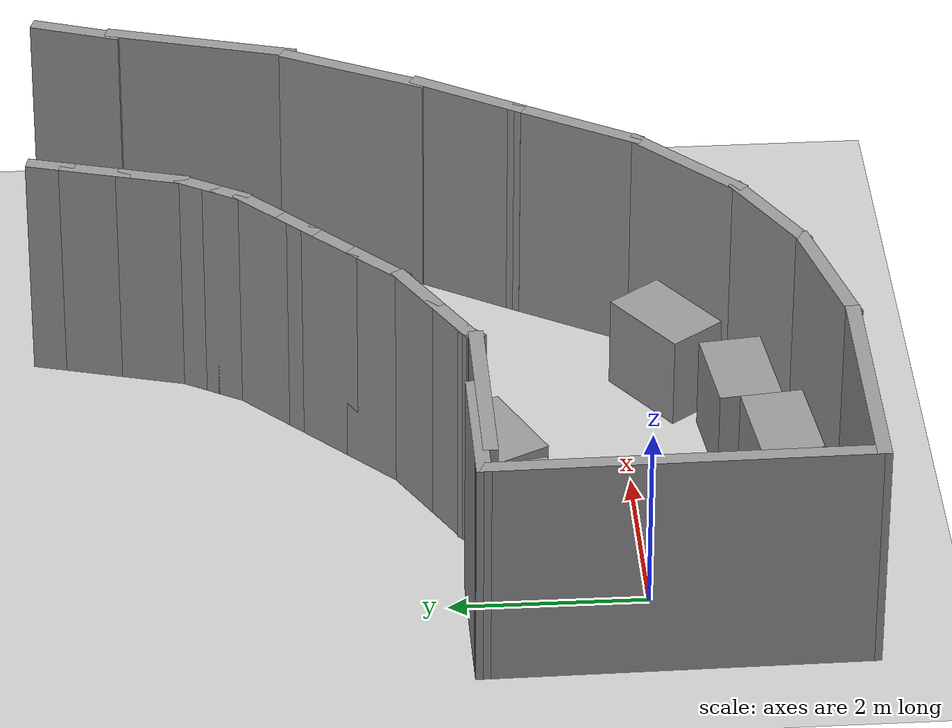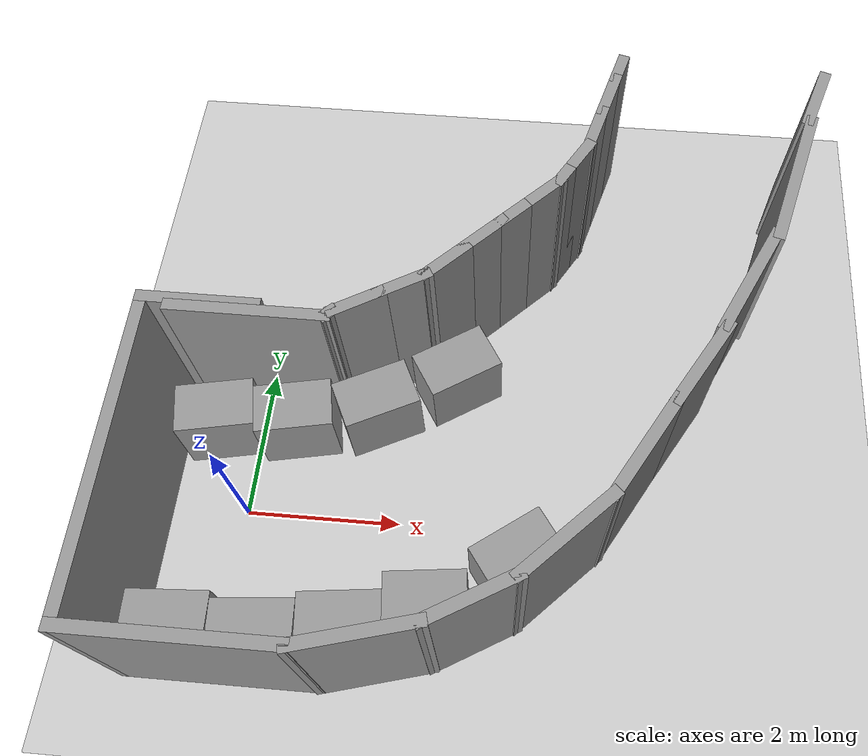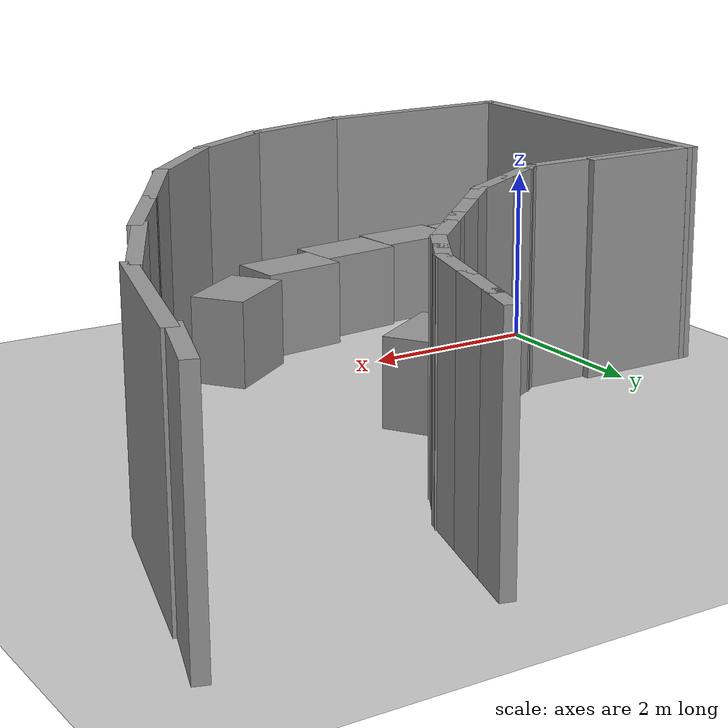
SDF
<sdf version="1.7">
 <world name="default">
  <light name="sun" type="directional">
   <pose>0 0 10 0 -0 0</pose>
   <diffuse>0.8 0.8 0.8 1</diffuse>
   <specular>0.2 0.2 0.2 1</specular>
   <attenuation>
    <range>1000</range>
    <constant>0.9</constant>
    <linear>0.01</linear>
    <quadratic>0.001</quadratic>
   </attenuation>
   <direction>-0.5 0.1 -0.9</direction>
   <spot><inner_angle>0</inner_angle><outer_angle>0</outer_angle><falloff>0</falloff></spot>
  </light>
  <model name="ground_plane">
   <static>1</static>
   <link name="link">
    <collision name="collision">
     <geometry><plane><normal>0 0 1</normal><size>100 100</size></plane></geometry>
     <surface>
      <contact><collide_bitmask>65535</collide_bitmask></contact>
      <friction><ode><mu>100</mu><mu2>50</mu2></ode></friction>
     </surface>
    </collision>
    <visual name="visual">
     <cast_shadows>0</cast_shadows>
     <geometry><plane><normal>0 0 1</normal><size>100 100</size></plane></geometry>
     <material>
      <script><uri>file://media/materials/scripts/gazebo.material</uri><name>Gazebo/Grey</name></script>
     </material>
    </visual>
   </link>
  </model>
  <gravity>0 0 -9.8</gravity>
  <magnetic_field>6e-06 2.3e-05 -4.2e-05</magnetic_field>
  <atmosphere type="adiabatic"/>
  <physics type="ode">
   <max_step_size>0.001</max_step_size>
   <real_time_factor>1</real_time_factor>
   <real_time_update_rate>1000</real_time_update_rate>
  </physics>
  <scene><ambient>0.4 0.4 0.4 1</ambient><background>0.7 0.7 0.7 1</background><shadows>1</shadows></scene>
  <spherical_coordinates>
   <surface_model>EARTH_WGS84</surface_model>
   <latitude_deg>0</latitude_deg>
   <longitude_deg>0</longitude_deg>
   <elevation>0</elevation>
   <heading_deg>0</heading_deg>
  </spherical_coordinates>
  <model name="curved_path">
   <pose>3.06084 1.92111 0 0 -0 0</pose>
   <link name="Wall_15">
    <collision name="Wall_15_Collision">
     <geometry><box><size>2.5 0.15 2.5</size></box></geometry>
     <pose>0 0 1.25 0 -0 0</pose>
    </collision>
    <visual name="Wall_15_Visual">
     <pose>0 0 1.25 0 -0 0</pose>
     <geometry><box><size>2.5 0.15 2.5</size></box></geometry>
     <material>
      <script><uri>file://media/materials/scripts/gazebo.material</uri><name>Gazebo/Grey</name></script>
      <ambient>1 1 1 1</ambient>
     </material>
     <meta><layer>0</layer></meta>
    </visual>
    <pose>-2.93415 -4.02037 0 0 -0 0</pose>
   </link>
   <link name="Wall_17">
    <collision name="Wall_17_Collision">
     <geometry><box><size>1.5 0.15 2.5</size></box></geometry>
     <pose>0 0 1.25 0 -0 0</pose>
    </collision>
    <visual name="Wall_17_Visual">
     <pose>0 0 1.25 0 -0 0</pose>
     <geometry><box><size>1.5 0.15 2.5</size></box></geometry>
     <material>
      <script><uri>file://media/materials/scripts/gazebo.material</uri><name>Gazebo/Grey</name></script>
      <ambient>1 1 1 1</ambient>
     </material>
     <meta><layer>0</layer></meta>
    </visual>
    <pose>-1.07726 -3.84808 0 0 -0 0.261799</pose>
   </link>
   <link name="Wall_18">
    <collision name="Wall_18_Collision">
     <geometry><box><size>1.25 0.15 2.5</size></box></geometry>
     <pose>0 0 1.25 0 -0 0</pose>
    </collision>
    <visual name="Wall_18_Visual">
     <pose>0 0 1.25 0 -0 0</pose>
     <geometry><box><size>1.25 0.15 2.5</size></box></geometry>
     <material>
      <script><uri>file://media/materials/scripts/gazebo.material</uri><name>Gazebo/Grey</name></script>
      <ambient>1 1 1 1</ambient>
     </material>
     <meta><layer>0</layer></meta>
    </visual>
    <pose>0.051053 -3.39838 0 0 -0 0.523599</pose>
   </link>
   <link name="Wall_19">
    <collision name="Wall_19_Collision">
     <geometry><box><size>1.5 0.15 2.5</size></box></geometry>
     <pose>0 0 1.25 0 -0 0</pose>
    </collision>
    <visual name="Wall_19_Visual">
     <pose>0 0 1.25 0 -0 0</pose>
     <geometry><box><size>1.5 0.15 2.5</size></box></geometry>
     <material>
      <script><uri>file://media/materials/scripts/gazebo.material</uri><name>Gazebo/Grey</name></script>
      <ambient>1 1 1 1</ambient>
     </material>
     <meta><layer>0</layer></meta>
    </visual>
    <pose>1.00466 -2.64608 0 0 -0 0.785398</pose>
   </link>
   <link name="Wall_20">
    <collision name="Wall_20_Collision">
     <geometry><box><size>1.5 0.15 2.5</size></box></geometry>
     <pose>0 0 1.25 0 -0 0</pose>
    </collision>
    <visual name="Wall_20_Visual">
     <pose>0 0 1.25 0 -0 0</pose>
     <geometry><box><size>1.5 0.15 2.5</size></box></geometry>
     <material>
      <script><uri>file://media/materials/scripts/gazebo.material</uri><name>Gazebo/Grey</name></script>
      <ambient>1 1 1 1</ambient>
     </material>
     <meta><layer>0</layer></meta>
    </visual>
    <pose>1.81946 -1.58422 0 0 -0 1.0472</pose>
   </link>
   <link name="Wall_21">
    <collision name="Wall_21_Collision">
     <geometry><box><size>1.30536 0.15 2.5</size></box></geometry>
     <pose>0 0 1.25 0 -0 0</pose>
    </collision>
    <visual name="Wall_21_Visual">
     <pose>0 0 1.25 0 -0 0</pose>
     <geometry><box><size>1.30536 0.15 2.5</size></box></geometry>
     <material>
      <script><uri>file://media/materials/scripts/gazebo.material</uri><name>Gazebo/Grey</name></script>
      <ambient>1 1 1 1</ambient>
     </material>
     <meta><layer>0</layer></meta>
    </visual>
    <pose>2.45219 -0.503109 0 0 -0 1.03438</pose>
   </link>
   <link name="Wall_22">
    <collision name="Wall_22_Collision">
     <geometry><box><size>1.63634 0.15 2.5</size></box></geometry>
     <pose>0 0 1.25 0 -0 0</pose>
    </collision>
    <visual name="Wall_22_Visual">
     <pose>0 0 1.25 0 -0 0</pose>
     <geometry><box><size>1.63634 0.15 2.5</size></box></geometry>
     <material>
      <script><uri>file://media/materials/scripts/gazebo.material</uri><name>Gazebo/Grey</name></script>
      <ambient>1 1 1 1</ambient>
     </material>
     <meta><layer>0</layer></meta>
    </visual>
    <pose>3.03499 0.660288 0 0 -0 1.11364</pose>
   </link>
   <link name="Wall_23">
    <collision name="Wall_23_Collision">
     <geometry><box><size>2.05026 0.15 2.5</size></box></geometry>
     <pose>0 0 1.25 0 -0 0</pose>
    </collision>
    <visual name="Wall_23_Visual">
     <pose>0 0 1.25 0 -0 0</pose>
     <geometry><box><size>2.05026 0.15 2.5</size></box></geometry>
     <material>
      <script><uri>file://media/materials/scripts/gazebo.material</uri><name>Gazebo/Grey</name></script>
      <ambient>1 1 1 1</ambient>
     </material>
     <meta><layer>0</layer></meta>
    </visual>
    <pose>3.65508 2.24336 0 0 -0 1.3028</pose>
   </link>
   <link name="Wall_24">
    <collision name="Wall_24_Collision">
     <geometry><box><size>0.972887 0.15 2.5</size></box></geometry>
     <pose>0 0 1.25 0 -0 0</pose>
    </collision>
    <visual name="Wall_24_Visual">
     <pose>0 0 1.25 0 -0 0</pose>
     <geometry><box><size>0.972887 0.15 2.5</size></box></geometry>
     <material>
      <script><uri>file://media/materials/scripts/gazebo.material</uri><name>Gazebo/Grey</name></script>
      <ambient>1 1 1 1</ambient>
     </material>
     <meta><layer>0</layer></meta>
    </visual>
    <pose>3.99644 3.54986 0 0 -0 1.24875</pose>
   </link>
   <link name="Wall_33">
    <collision name="Wall_33_Collision">
     <geometry><box><size>2 0.15 2.5</size></box></geometry>
     <pose>0 0 1.25 0 -0 0</pose>
    </collision>
    <visual name="Wall_33_Visual">
     <pose>0 0 1.25 0 -0 0</pose>
     <geometry><box><size>2 0.15 2.5</size></box></geometry>
     <material>
      <script><uri>file://media/materials/scripts/gazebo.material</uri><name>Gazebo/Grey</name></script>
      <ambient>1 1 1 1</ambient>
     </material>
     <meta><layer>0</layer></meta>
    </visual>
    <pose>-2.87462 -0.271609 0 0 -0 0</pose>
   </link>
   <link name="Wall_34">
    <collision name="Wall_34_Collision">
     <geometry><box><size>0.25 0.15 2.5</size></box></geometry>
     <pose>0 0 1.25 0 -0 0</pose>
    </collision>
    <visual name="Wall_34_Visual">
     <pose>0 0 1.25 0 -0 0</pose>
     <geometry><box><size>0.25 0.15 2.5</size></box></geometry>
     <material>
      <script><uri>file://media/materials/scripts/gazebo.material</uri><name>Gazebo/Grey</name></script>
      <ambient>1 1 1 1</ambient>
     </material>
     <meta><layer>0</layer></meta>
    </visual>
    <pose>-1.91426 -0.236253 0 0 -0 0.785398</pose>
   </link>
   <link name="Wall_35">
    <collision name="Wall_35_Collision">
     <geometry><box><size>0.75 0.15 2.5</size></box></geometry>
     <pose>0 0 1.25 0 -0 0</pose>
    </collision>
    <visual name="Wall_35_Visual">
     <pose>0 0 1.25 0 -0 0</pose>
     <geometry><box><size>0.75 0.15 2.5</size></box></geometry>
     <material>
      <script><uri>file://media/materials/scripts/gazebo.material</uri><name>Gazebo/Grey</name></script>
      <ambient>1 1 1 1</ambient>
     </material>
     <meta><layer>0</layer></meta>
    </visual>
    <pose>-1.6191 -0.050898 0 0 -0 0.523599</pose>
   </link>
   <link name="Wall_36">
    <collision name="Wall_36_Collision">
     <geometry><box><size>0.75 0.15 2.5</size></box></geometry>
     <pose>0 0 1.25 0 -0 0</pose>
    </collision>
    <visual name="Wall_36_Visual">
     <pose>0 0 1.25 0 -0 0</pose>
     <geometry><box><size>0.75 0.15 2.5</size></box></geometry>
     <material>
      <script><uri>file://media/materials/scripts/gazebo.material</uri><name>Gazebo/Grey</name></script>
      <ambient>1 1 1 1</ambient>
     </material>
     <meta><layer>0</layer></meta>
    </visual>
    <pose>-1.09949 0.249102 0 0 -0 0.523599</pose>
   </link>
   <link name="Wall_37">
    <collision name="Wall_37_Collision">
     <geometry><box><size>0.75 0.15 2.5</size></box></geometry>
     <pose>0 0 1.25 0 -0 0</pose>
    </collision>
    <visual name="Wall_37_Visual">
     <pose>0 0 1.25 0 -0 0</pose>
     <geometry><box><size>0.75 0.15 2.5</size></box></geometry>
     <material>
      <script><uri>file://media/materials/scripts/gazebo.material</uri><name>Gazebo/Grey</name></script>
      <ambient>1 1 1 1</ambient>
     </material>
     <meta><layer>0</layer></meta>
    </visual>
    <pose>-0.627546 0.611234 0 0 -0 0.785398</pose>
   </link>
   <link name="Wall_38">
    <collision name="Wall_38_Collision">
     <geometry><box><size>0.75 0.15 2.5</size></box></geometry>
     <pose>0 0 1.25 0 -0 0</pose>
    </collision>
    <visual name="Wall_38_Visual">
     <pose>0 0 1.25 0 -0 0</pose>
     <geometry><box><size>0.75 0.15 2.5</size></box></geometry>
     <material>
      <script><uri>file://media/materials/scripts/gazebo.material</uri><name>Gazebo/Grey</name></script>
      <ambient>1 1 1 1</ambient>
     </material>
     <meta><layer>0</layer></meta>
    </visual>
    <pose>-0.203282 1.0355 0 0 -0 0.785398</pose>
   </link>
   <link name="Wall_39">
    <collision name="Wall_39_Collision">
     <geometry><box><size>0.5 0.15 2.5</size></box></geometry>
     <pose>0 0 1.25 0 -0 0</pose>
    </collision>
    <visual name="Wall_39_Visual">
     <pose>0 0 1.25 0 -0 0</pose>
     <geometry><box><size>0.5 0.15 2.5</size></box></geometry>
     <material>
      <script><uri>file://media/materials/scripts/gazebo.material</uri><name>Gazebo/Grey</name></script>
      <ambient>1 1 1 1</ambient>
     </material>
     <meta><layer>0</layer></meta>
    </visual>
    <pose>0.132593 1.37137 0 0 -0 0.785398</pose>
   </link>
   <link name="Wall_40">
    <collision name="Wall_40_Collision">
     <geometry><box><size>0.75 0.15 2.5</size></box></geometry>
     <pose>0 0 1.25 0 -0 0</pose>
    </collision>
    <visual name="Wall_40_Visual">
     <pose>0 0 1.25 0 -0 0</pose>
     <geometry><box><size>0.75 0.15 2.5</size></box></geometry>
     <material>
      <script><uri>file://media/materials/scripts/gazebo.material</uri><name>Gazebo/Grey</name></script>
      <ambient>1 1 1 1</ambient>
     </material>
     <meta><layer>0</layer></meta>
    </visual>
    <pose>0.468469 1.70725 0 0 -0 0.785398</pose>
   </link>
   <link name="Wall_41">
    <collision name="Wall_41_Collision">
     <geometry><box><size>0.5 0.15 2.5</size></box></geometry>
     <pose>0 0 1.25 0 -0 0</pose>
    </collision>
    <visual name="Wall_41_Visual">
     <pose>0 0 1.25 0 -0 0</pose>
     <geometry><box><size>0.5 0.15 2.5</size></box></geometry>
     <material>
      <script><uri>file://media/materials/scripts/gazebo.material</uri><name>Gazebo/Grey</name></script>
      <ambient>1 1 1 1</ambient>
     </material>
     <meta><layer>0</layer></meta>
    </visual>
    <pose>0.768101 2.07094 0 0 -0 1.0472</pose>
   </link>
   <link name="Wall_42">
    <collision name="Wall_42_Collision">
     <geometry><box><size>0.5 0.15 2.5</size></box></geometry>
     <pose>0 0 1.25 0 -0 0</pose>
    </collision>
    <visual name="Wall_42_Visual">
     <pose>0 0 1.25 0 -0 0</pose>
     <geometry><box><size>0.5 0.15 2.5</size></box></geometry>
     <material>
      <script><uri>file://media/materials/scripts/gazebo.material</uri><name>Gazebo/Grey</name></script>
      <ambient>1 1 1 1</ambient>
     </material>
     <meta><layer>0</layer></meta>
    </visual>
    <pose>0.943101 2.37405 0 0 -0 1.0472</pose>
   </link>
   <link name="Wall_43">
    <collision name="Wall_43_Collision">
     <geometry><box><size>0.75 0.15 2.5</size></box></geometry>
     <pose>0 0 1.25 0 -0 0</pose>
    </collision>
    <visual name="Wall_43_Visual">
     <pose>0 0 1.25 0 -0 0</pose>
     <geometry><box><size>0.75 0.15 2.5</size></box></geometry>
     <material>
      <script><uri>file://media/materials/scripts/gazebo.material</uri><name>Gazebo/Grey</name></script>
      <ambient>1 1 1 1</ambient>
     </material>
     <meta><layer>0</layer></meta>
    </visual>
    <pose>1.10825 2.81538 0 0 -0 1.309</pose>
   </link>
   <link name="Wall_44">
    <collision name="Wall_44_Collision">
     <geometry><box><size>0.75 0.15 2.5</size></box></geometry>
     <pose>0 0 1.25 0 -0 0</pose>
    </collision>
    <visual name="Wall_44_Visual">
     <pose>0 0 1.25 0 -0 0</pose>
     <geometry><box><size>0.75 0.15 2.5</size></box></geometry>
     <material>
      <script><uri>file://media/materials/scripts/gazebo.material</uri><name>Gazebo/Grey</name></script>
      <ambient>1 1 1 1</ambient>
     </material>
     <meta><layer>0</layer></meta>
    </visual>
    <pose>1.26354 3.39493 0 0 -0 1.309</pose>
   </link>
   <link name="Wall_45">
    <collision name="Wall_45_Collision">
     <geometry><box><size>0.5 0.15 2.5</size></box></geometry>
     <pose>0 0 1.25 0 -0 0</pose>
    </collision>
    <visual name="Wall_45_Visual">
     <pose>0 0 1.25 0 -0 0</pose>
     <geometry><box><size>0.5 0.15 2.5</size></box></geometry>
     <material>
      <script><uri>file://media/materials/scripts/gazebo.material</uri><name>Gazebo/Grey</name></script>
      <ambient>1 1 1 1</ambient>
     </material>
     <meta><layer>0</layer></meta>
    </visual>
    <pose>1.38648 3.85375 0 0 -0 1.309</pose>
   </link>
   <link name="Wall_47">
    <collision name="Wall_47_Collision">
     <geometry><box><size>3.98749 0.15 2.5</size></box></geometry>
     <pose>0 0 1.25 0 -0 0</pose>
    </collision>
    <visual name="Wall_47_Visual">
     <pose>0 0 1.25 0 -0 0</pose>
     <geometry><box><size>3.98749 0.15 2.5</size></box></geometry>
     <material>
      <script><uri>file://media/materials/scripts/gazebo.material</uri><name>Gazebo/Grey</name></script>
      <ambient>1 1 1 1</ambient>
     </material>
     <meta><layer>0</layer></meta>
    </visual>
    <pose>-4.12749 -2.10172 0 0 -0 -1.56124</pose>
   </link>
   <link name="Wall_49">
    <collision name="Wall_49_Collision">
     <geometry><box><size>1.5 0.15 2.5</size></box></geometry>
     <pose>0 0 1.25 0 -0 0</pose>
    </collision>
    <visual name="Wall_49_Visual">
     <pose>0 0 1.25 0 -0 0</pose>
     <geometry><box><size>1.5 0.15 2.5</size></box></geometry>
     <material>
      <script><uri>file://media/materials/scripts/gazebo.material</uri><name>Gazebo/Grey</name></script>
      <ambient>1 1 1 1</ambient>
     </material>
     <meta><layer>0</layer></meta>
    </visual>
    <pose>-3.47084 -0.18306 0 0 -0 0</pose>
   </link>
   <static>1</static>
  </model>
  <model name="unit_box">
   <pose>-0.461181 -1.63254 0.5 0 -0 0.05405</pose>
   <link name="link">
    <inertial>
     <mass>1</mass>
     <inertia>
      <ixx>0.166667</ixx>
      <ixy>0</ixy>
      <ixz>0</ixz>
      <iyy>0.166667</iyy>
      <iyz>0</iyz>
      <izz>0.166667</izz>
     </inertia>
    </inertial>
    <collision name="collision"><geometry><box><size>1 0.642108 1</size></box></geometry></collision>
    <visual name="visual">
     <geometry><box><size>1 0.642108 1</size></box></geometry>
     <material>
      <script><name>Gazebo/Grey</name><uri>file://media/materials/scripts/gazebo.material</uri></script>
     </material>
    </visual>
   </link>
  </model>
  <model name="unit_box_clone">
   <pose>0.551463 -1.64772 0.5 0 -0 0.081275</pose>
   <link name="link">
    <inertial>
     <mass>1</mass>
     <inertia>
      <ixx>0.166667</ixx>
      <ixy>0</ixy>
      <ixz>0</ixz>
      <iyy>0.166667</iyy>
      <iyz>0</iyz>
      <izz>0.166667</izz>
     </inertia>
    </inertial>
    <collision name="collision"><geometry><box><size>1 0.642108 1</size></box></geometry></collision>
    <visual name="visual">
     <geometry><box><size>1 0.642108 1</size></box></geometry>
     <material>
      <script><name>Gazebo/Grey</name><uri>file://media/materials/scripts/gazebo.material</uri></script>
     </material>
    </visual>
   </link>
  </model>
  <model name="unit_box_clone_0">
   <pose>1.54897 -1.47451 0.5 0 -0 0.112138</pose>
   <link name="link">
    <inertial>
     <mass>1</mass>
     <inertia>
      <ixx>0.166667</ixx>
      <ixy>0</ixy>
      <ixz>0</ixz>
      <iyy>0.166667</iyy>
      <iyz>0</iyz>
      <izz>0.166667</izz>
     </inertia>
    </inertial>
    <collision name="collision"><geometry><box><size>1 0.642108 1</size></box></geometry></collision>
    <visual name="visual">
     <geometry><box><size>1 0.642108 1</size></box></geometry>
     <material>
      <script><name>Gazebo/Grey</name><uri>file://media/materials/scripts/gazebo.material</uri></script>
     </material>
    </visual>
   </link>
  </model>
  <model name="unit_box_clone_1">
   <pose>2.5193 -1.15361 0.499995 0 -9e-06 0.111739</pose>
   <link name="link">
    <inertial>
     <mass>1</mass>
     <inertia>
      <ixx>0.166667</ixx>
      <ixy>0</ixy>
      <ixz>0</ixz>
      <iyy>0.166667</iyy>
      <iyz>0</iyz>
      <izz>0.166667</izz>
     </inertia>
    </inertial>
    <collision name="collision"><geometry><box><size>1 0.642108 1</size></box></geometry></collision>
    <visual name="visual">
     <geometry><box><size>1 0.642108 1</size></box></geometry>
     <material>
      <script><name>Gazebo/Grey</name><uri>file://media/materials/scripts/gazebo.material</uri></script>
     </material>
    </visual>
   </link>
  </model>
  <model name="unit_box_clone_2">
   <pose>3.55844 -0.497014 0.5 0 -0 0.628766</pose>
   <link name="link">
    <inertial>
     <mass>1</mass>
     <inertia>
      <ixx>0.166667</ixx>
      <ixy>0</ixy>
      <ixz>0</ixz>
      <iyy>0.166667</iyy>
      <iyz>0</iyz>
      <izz>0.166667</izz>
     </inertia>
    </inertial>
    <collision name="collision"><geometry><box><size>1 0.642108 1</size></box></geometry></collision>
    <visual name="visual">
     <geometry><box><size>1 0.642108 1</size></box></geometry>
     <material>
      <script><name>Gazebo/Grey</name><uri>file://media/materials/scripts/gazebo.material</uri></script>
     </material>
    </visual>
   </link>
  </model>
  <model name="unit_box_clone_2_clone">
   <pose>2.57955 1.97381 0.5 0 -0 0.565769</pose>
   <link name="link">
    <inertial>
     <mass>1</mass>
     <inertia>
      <ixx>0.166667</ixx>
      <ixy>0</ixy>
      <ixz>0</ixz>
      <iyy>0.166667</iyy>
      <iyz>0</iyz>
      <izz>0.166667</izz>
     </inertia>
    </inertial>
    <collision name="collision"><geometry><box><size>1 0.642108 1</size></box></geometry></collision>
    <visual name="visual">
     <geometry><box><size>1 0.642108 1</size></box></geometry>
     <material>
      <script><name>Gazebo/Grey</name><uri>file://media/materials/scripts/gazebo.material</uri></script>
     </material>
    </visual>
   </link>
  </model>
  <model name="unit_box_clone_2_clone_0">
   <pose>1.58651 1.41455 0.5 0 -0 0.461336</pose>
   <link name="link">
    <inertial>
     <mass>1</mass>
     <inertia>
      <ixx>0.166667</ixx>
      <ixy>0</ixy>
      <ixz>0</ixz>
      <iyy>0.166667</iyy>
      <iyz>0</iyz>
      <izz>0.166667</izz>
     </inertia>
    </inertial>
    <collision name="collision"><geometry><box><size>1 0.642108 1</size></box></geometry></collision>
    <visual name="visual">
     <geometry><box><size>1 0.642108 1</size></box></geometry>
     <material>
      <script><name>Gazebo/Grey</name><uri>file://media/materials/scripts/gazebo.material</uri></script>
     </material>
    </visual>
   </link>
  </model>
  <model name="unit_box_clone_3">
   <pose>-0.453428 1.07447 0.49999 0 -0 0.19306</pose>
   <link name="link">
    <inertial>
     <mass>1</mass>
     <inertia>
      <ixx>0.166667</ixx>
      <ixy>0</ixy>
      <ixz>0</ixz>
      <iyy>0.166667</iyy>
      <iyz>0</iyz>
      <izz>0.166667</izz>
     </inertia>
    </inertial>
    <collision name="collision"><geometry><box><size>1 0.642108 1</size></box></geometry></collision>
    <visual name="visual">
     <geometry><box><size>1 0.642108 1</size></box></geometry>
     <material>
      <script><name>Gazebo/Grey</name><uri>file://media/materials/scripts/gazebo.material</uri></script>
     </material>
    </visual>
   </link>
  </model>
  <model name="unit_box_clone_4">
   <pose>0.550394 1.15304 0.500001 -3e-06 -0 0.193826</pose>
   <link name="link">
    <inertial>
     <mass>1</mass>
     <inertia>
      <ixx>0.166667</ixx>
      <ixy>0</ixy>
      <ixz>0</ixz>
      <iyy>0.166667</iyy>
      <iyz>0</iyz>
      <izz>0.166667</izz>
     </inertia>
    </inertial>
    <collision name="collision"><geometry><box><size>1 0.642108 1</size></box></geometry></collision>
    <visual name="visual">
     <geometry><box><size>1 0.642108 1</size></box></geometry>
     <material>
      <script><name>Gazebo/Grey</name><uri>file://media/materials/scripts/gazebo.material</uri></script>
     </material>
    </visual>
   </link>
  </model>
 </world>
</sdf>
